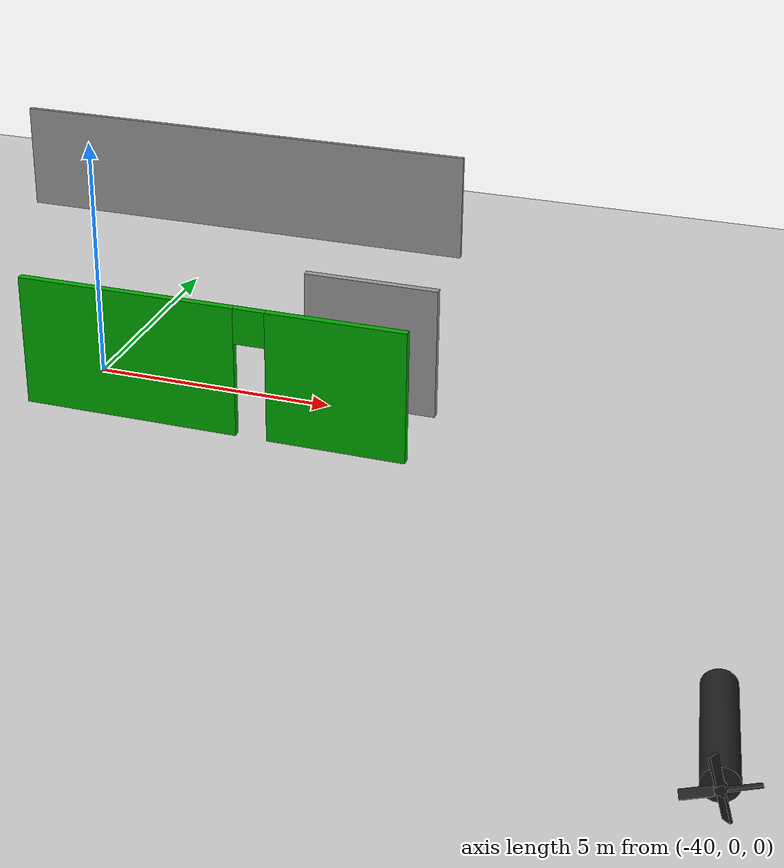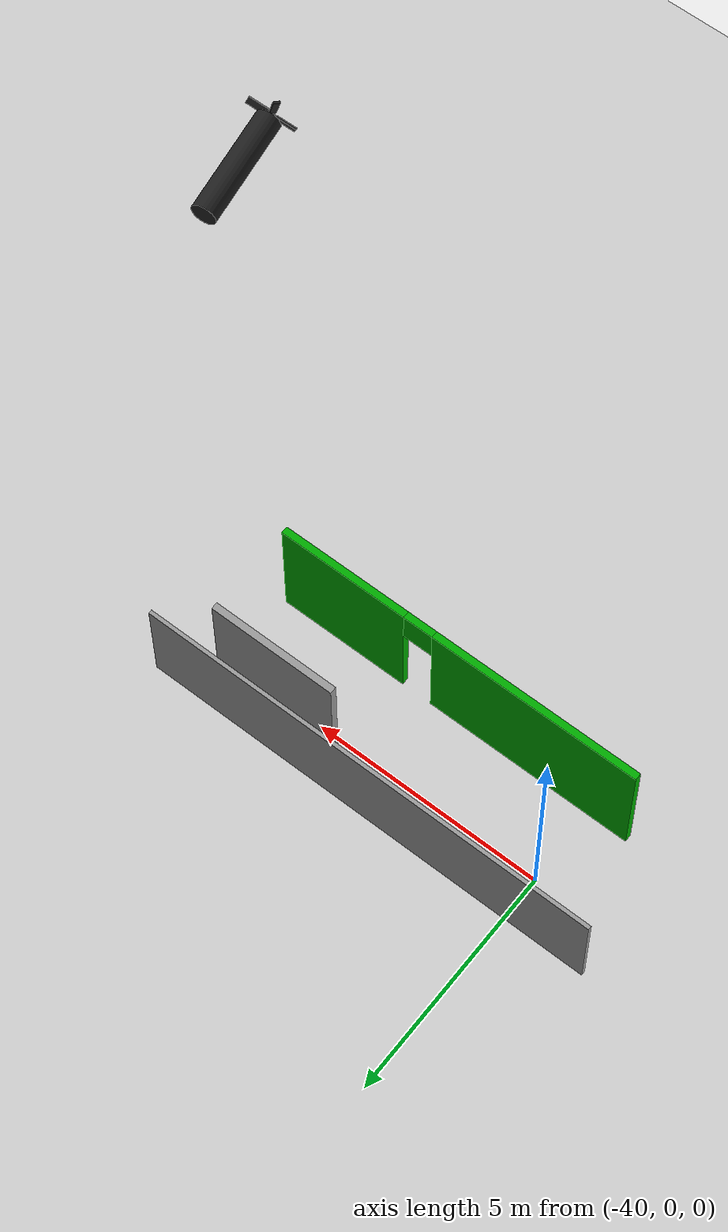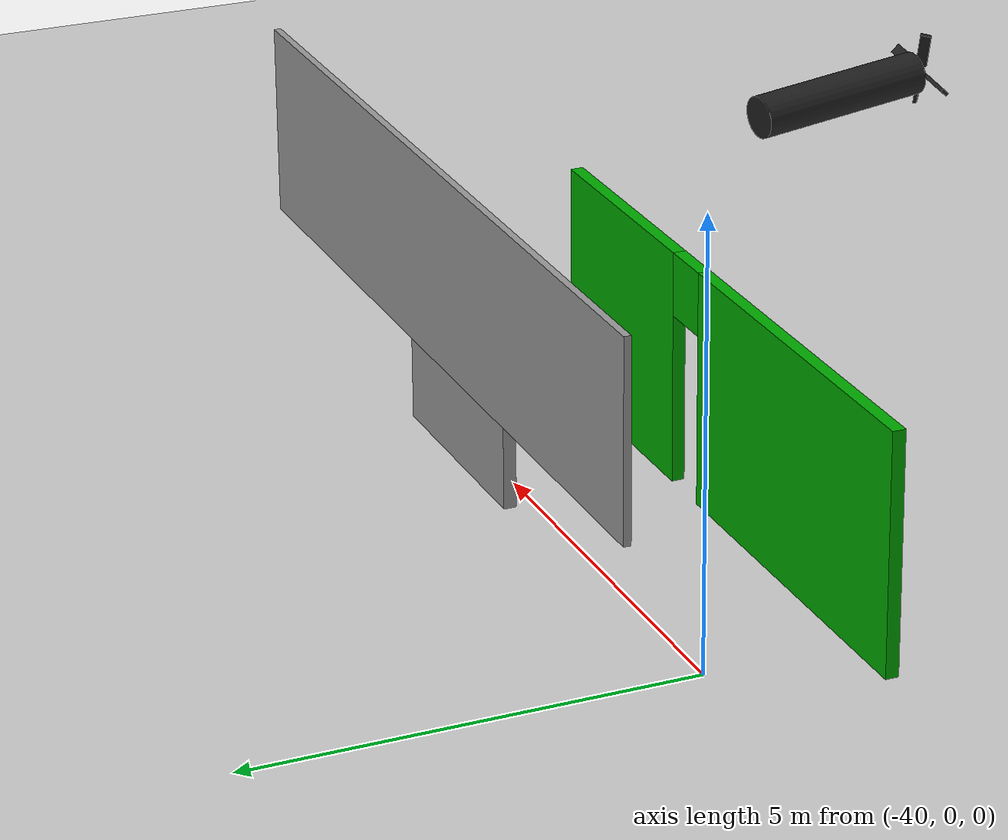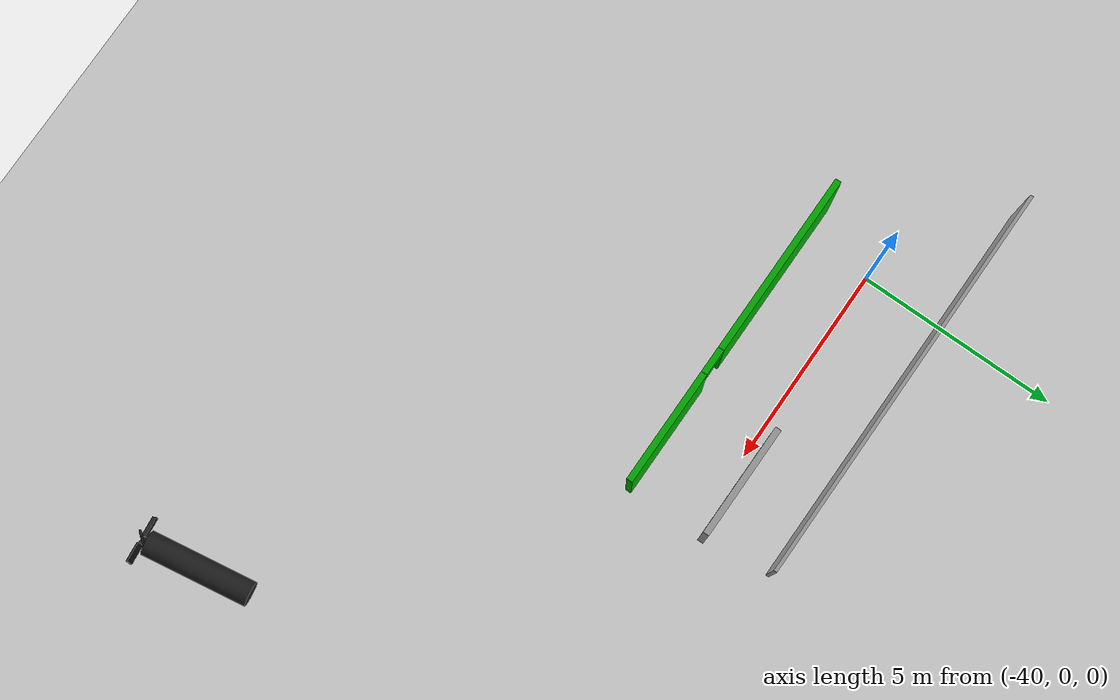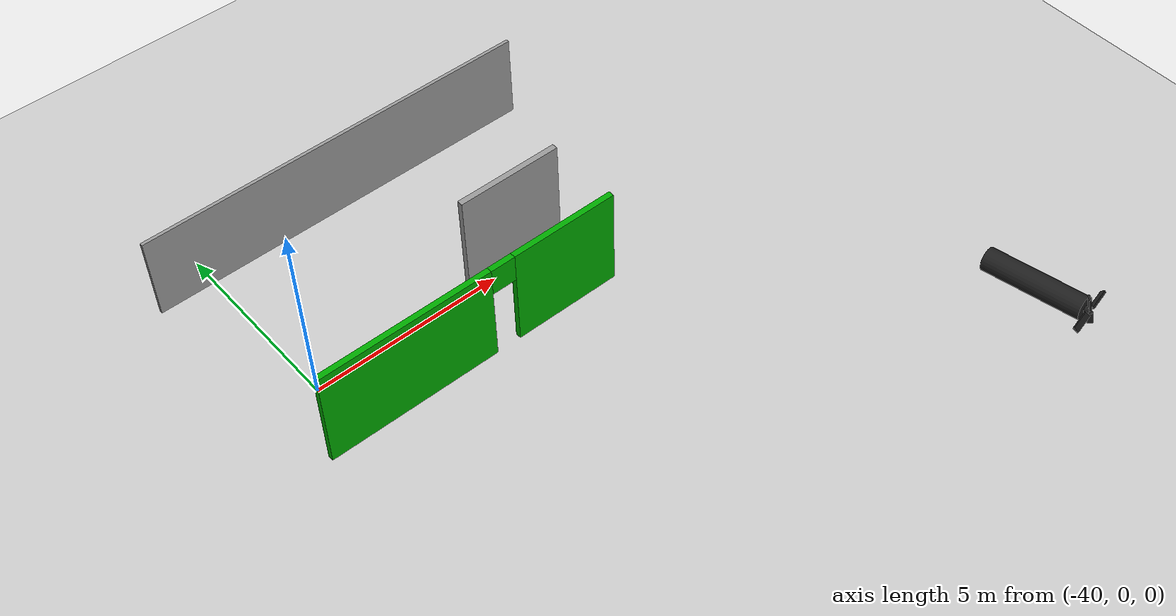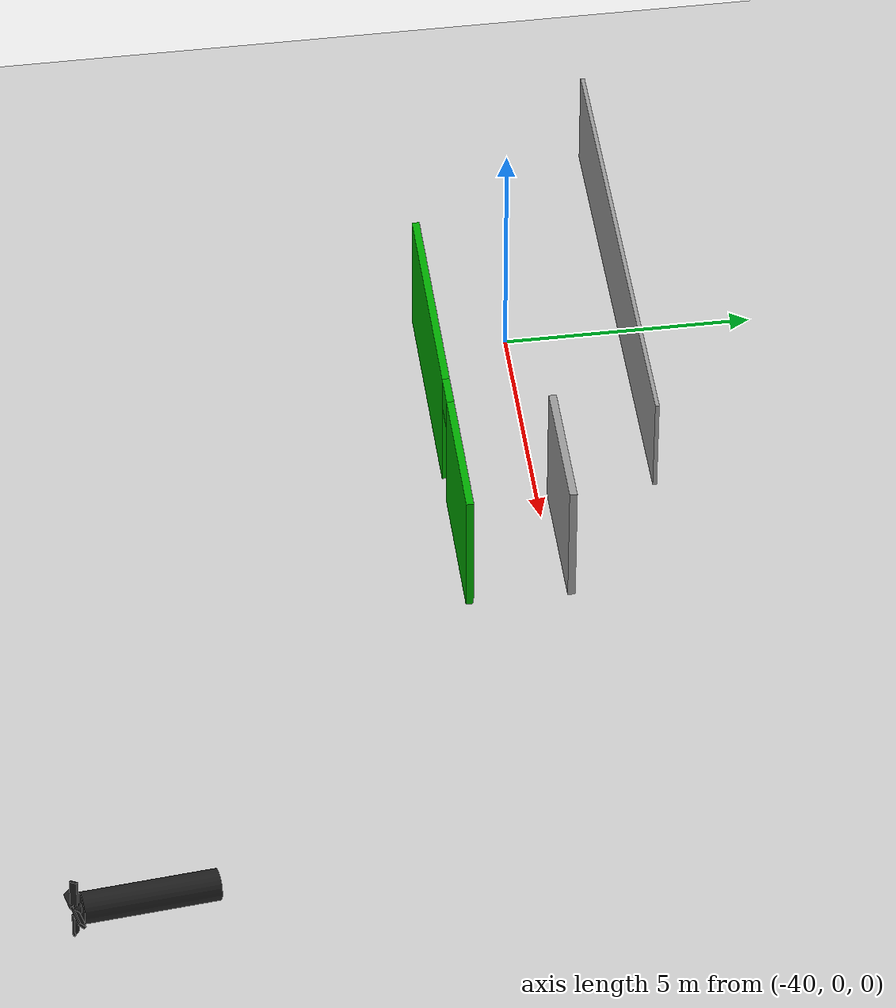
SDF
<sdf version="1.7">
 <world name="default">
  <model name="ground_plane">
   <static>1</static>
   <link name="link">
    <collision name="collision">
     <geometry><plane><normal>0 0 1</normal><size>100 100</size></plane></geometry>
     <surface><friction><ode><mu>100</mu><mu2>50</mu2></ode></friction></surface>
    </collision>
    <visual name="visual">
     <cast_shadows>0</cast_shadows>
     <geometry><plane><normal>0 0 1</normal><size>100 100</size></plane></geometry>
     <material>
      <script><uri>file://media/materials/scripts/gazebo.material</uri><name>Gazebo/Grey</name></script>
     </material>
    </visual>
   </link>
  </model>
  <model name="233333osrf_elevator">
   <link name="Wall_10">
    <pose>3.11003 -4.9485 0 0 -0 0</pose>
    <visual name="Wall_10_Visual_0">
     <meta><layer>0</layer></meta>
     <pose>-1.73626 0 1.3715 0 -0 0</pose>
     <geometry><box><size>4.52747 0.15 2.743</size></box></geometry>
     <material>
      <script><uri>file://media/materials/scripts/gazebo.material</uri><name>Gazebo/Grey</name></script>
      <ambient>0 0.666667 0 1</ambient>
      <shader type="pixel"/>
     </material>
    </visual>
    <visual name="Wall_10_Visual_1">
     <meta><layer>0</layer></meta>
     <pose>2.58694 0 1.3715 0 -0 0</pose>
     <geometry><box><size>2.82611 0.15 2.743</size></box></geometry>
     <material>
      <script><uri>file://media/materials/scripts/gazebo.material</uri><name>Gazebo/Grey</name></script>
      <ambient>0 0.666667 0 1</ambient>
      <shader type="pixel"/>
     </material>
    </visual>
    <visual name="Wall_10_Visual_2">
     <meta><layer>0</layer></meta>
     <pose>0.85068 0 2.3715 0 -0 0</pose>
     <geometry><box><size>0.646413 0.15 0.743</size></box></geometry>
     <material>
      <script><uri>file://media/materials/scripts/gazebo.material</uri><name>Gazebo/Grey</name></script>
      <ambient>0 0.666667 0 1</ambient>
      <shader type="pixel"/>
     </material>
    </visual>
    <collision name="Wall_10_Collision_0">
     <pose>-1.73626 0 1.3715 0 -0 0</pose>
     <geometry><box><size>4.52747 0.15 2.743</size></box></geometry>
     <surface>
      <friction>
       <ode><mu>1</mu><mu2>1</mu2><fdir1>0 0 0</fdir1><slip1>0</slip1><slip2>0</slip2></ode>
       <torsional>
        <coefficient>1</coefficient>
        <patch_radius>0</patch_radius>
        <surface_radius>0</surface_radius>
        <use_patch_radius>1</use_patch_radius>
        <ode><slip>0</slip></ode>
       </torsional>
      </friction>
      <bounce><restitution_coefficient>0</restitution_coefficient><threshold>1e+06</threshold></bounce>
      <contact>
       <collide_without_contact>0</collide_without_contact>
       <collide_without_contact_bitmask>1</collide_without_contact_bitmask>
       <collide_bitmask>1</collide_bitmask>
       <ode>
        <soft_cfm>0</soft_cfm>
        <soft_erp>0.2</soft_erp>
        <kp>1e+13</kp>
        <kd>1</kd>
        <max_vel>0.01</max_vel>
        <min_depth>0</min_depth>
       </ode>
       <bullet>
        <split_impulse>1</split_impulse>
        <split_impulse_penetration_threshold>-0.01</split_impulse_penetration_threshold>
        <soft_cfm>0</soft_cfm>
        <soft_erp>0.2</soft_erp>
        <kp>1e+13</kp>
        <kd>1</kd>
       </bullet>
      </contact>
     </surface>
    </collision>
    <collision name="Wall_10_Collision_1">
     <pose>2.58694 0 1.3715 0 -0 0</pose>
     <geometry><box><size>2.82611 0.15 2.743</size></box></geometry>
     <surface>
      <friction>
       <ode><mu>1</mu><mu2>1</mu2><fdir1>0 0 0</fdir1><slip1>0</slip1><slip2>0</slip2></ode>
       <torsional>
        <coefficient>1</coefficient>
        <patch_radius>0</patch_radius>
        <surface_radius>0</surface_radius>
        <use_patch_radius>1</use_patch_radius>
        <ode><slip>0</slip></ode>
       </torsional>
      </friction>
      <bounce><restitution_coefficient>0</restitution_coefficient><threshold>1e+06</threshold></bounce>
      <contact>
       <collide_without_contact>0</collide_without_contact>
       <collide_without_contact_bitmask>1</collide_without_contact_bitmask>
       <collide_bitmask>1</collide_bitmask>
       <ode>
        <soft_cfm>0</soft_cfm>
        <soft_erp>0.2</soft_erp>
        <kp>1e+13</kp>
        <kd>1</kd>
        <max_vel>0.01</max_vel>
        <min_depth>0</min_depth>
       </ode>
       <bullet>
        <split_impulse>1</split_impulse>
        <split_impulse_penetration_threshold>-0.01</split_impulse_penetration_threshold>
        <soft_cfm>0</soft_cfm>
        <soft_erp>0.2</soft_erp>
        <kp>1e+13</kp>
        <kd>1</kd>
       </bullet>
      </contact>
     </surface>
    </collision>
    <collision name="Wall_10_Collision_2">
     <pose>0.85068 0 2.3715 0 -0 0</pose>
     <geometry><box><size>0.646413 0.15 0.743</size></box></geometry>
     <surface>
      <friction>
       <ode><mu>1</mu><mu2>1</mu2><fdir1>0 0 0</fdir1><slip1>0</slip1><slip2>0</slip2></ode>
       <torsional>
        <coefficient>1</coefficient>
        <patch_radius>0</patch_radius>
        <surface_radius>0</surface_radius>
        <use_patch_radius>1</use_patch_radius>
        <ode><slip>0</slip></ode>
       </torsional>
      </friction>
      <bounce><restitution_coefficient>0</restitution_coefficient><threshold>1e+06</threshold></bounce>
      <contact>
       <collide_without_contact>0</collide_without_contact>
       <collide_without_contact_bitmask>1</collide_without_contact_bitmask>
       <collide_bitmask>1</collide_bitmask>
       <ode>
        <soft_cfm>0</soft_cfm>
        <soft_erp>0.2</soft_erp>
        <kp>1e+13</kp>
        <kd>1</kd>
        <max_vel>0.01</max_vel>
        <min_depth>0</min_depth>
       </ode>
       <bullet>
        <split_impulse>1</split_impulse>
        <split_impulse_penetration_threshold>-0.01</split_impulse_penetration_threshold>
        <soft_cfm>0</soft_cfm>
        <soft_erp>0.2</soft_erp>
        <kp>1e+13</kp>
        <kd>1</kd>
       </bullet>
      </contact>
     </surface>
    </collision>
   </link>
   <link name="Wall_23">
    <pose>5.74203 -2.9565 0 0 -0 0</pose>
    <visual name="Wall_23_Visual">
     <meta><layer>0</layer></meta>
     <pose>0 0 1.3715 0 -0 0</pose>
     <geometry><box><size>2.75 0.15 2.743</size></box></geometry>
     <material>
      <script><uri>file://media/materials/scripts/gazebo.material</uri><name>Gazebo/Grey</name></script>
      <ambient>1 1 1 1</ambient>
      <shader type="pixel"/>
     </material>
    </visual>
    <collision name="Wall_23_Collision">
     <pose>0 0 1.3715 0 -0 0</pose>
     <geometry><box><size>2.75 0.15 2.743</size></box></geometry>
     <surface>
      <friction>
       <ode><mu>1</mu><mu2>1</mu2><fdir1>0 0 0</fdir1><slip1>0</slip1><slip2>0</slip2></ode>
       <torsional>
        <coefficient>1</coefficient>
        <patch_radius>0</patch_radius>
        <surface_radius>0</surface_radius>
        <use_patch_radius>1</use_patch_radius>
        <ode><slip>0</slip></ode>
       </torsional>
      </friction>
      <bounce><restitution_coefficient>0</restitution_coefficient><threshold>1e+06</threshold></bounce>
      <contact>
       <collide_without_contact>0</collide_without_contact>
       <collide_without_contact_bitmask>1</collide_without_contact_bitmask>
       <collide_bitmask>1</collide_bitmask>
       <ode>
        <soft_cfm>0</soft_cfm>
        <soft_erp>0.2</soft_erp>
        <kp>1e+13</kp>
        <kd>1</kd>
        <max_vel>0.01</max_vel>
        <min_depth>0</min_depth>
       </ode>
       <bullet>
        <split_impulse>1</split_impulse>
        <split_impulse_penetration_threshold>-0.01</split_impulse_penetration_threshold>
        <soft_cfm>0</soft_cfm>
        <soft_erp>0.2</soft_erp>
        <kp>1e+13</kp>
        <kd>1</kd>
       </bullet>
      </contact>
     </surface>
    </collision>
   </link>
   <link name="floor1_part7">
    <pose>2.39941 -1.39058 3.85828 1.5708 -0 0</pose>
    <visual name="visual">
     <meta><layer>1</layer></meta>
     <geometry><box><size>9.43026 2.0998 0.078</size></box></geometry>
     <material><script><name>Gazebo/Grey</name><uri>__default__</uri></script><shader type="pixel"/></material>
    </visual>
    <collision name="collision">
     <geometry><box><size>9.43026 2.0998 0.078</size></box></geometry>
     <surface>
      <friction>
       <ode><mu>1</mu><mu2>1</mu2><fdir1>0 0 0</fdir1><slip1>0</slip1><slip2>0</slip2></ode>
       <torsional>
        <coefficient>1</coefficient>
        <patch_radius>0</patch_radius>
        <surface_radius>0</surface_radius>
        <use_patch_radius>1</use_patch_radius>
        <ode><slip>0</slip></ode>
       </torsional>
      </friction>
      <bounce><restitution_coefficient>0</restitution_coefficient><threshold>1e+06</threshold></bounce>
      <contact>
       <collide_without_contact>0</collide_without_contact>
       <collide_without_contact_bitmask>1</collide_without_contact_bitmask>
       <collide_bitmask>1</collide_bitmask>
       <ode>
        <soft_cfm>0</soft_cfm>
        <soft_erp>0.2</soft_erp>
        <kp>1e+13</kp>
        <kd>1</kd>
        <max_vel>0.01</max_vel>
        <min_depth>0</min_depth>
       </ode>
       <bullet>
        <split_impulse>1</split_impulse>
        <split_impulse_penetration_threshold>-0.01</split_impulse_penetration_threshold>
        <soft_cfm>0</soft_cfm>
        <soft_erp>0.2</soft_erp>
        <kp>1e+13</kp>
        <kd>1</kd>
       </bullet>
      </contact>
     </surface>
    </collision>
   </link>
   <static>1</static>
   <pose>-39.9417 3.24072 0 0 -0 0</pose>
  </model>
  <model name="submarine_sinking_0_clone_22">
   <pose>-25.7131 -9.67222 0.459063 1.50544 -0.272645 0.166817</pose>
   <link name="body">
    <pose>0 0 -1.07935 0 -0 0</pose>
    <inertial>
     <mass>1102.7</mass>
     <inertia><ixx>645.998</ixx><ixy>0</ixy><ixz>0</ixz><iyy>645.998</iyy><iyz>0</iyz><izz>49.6215</izz></inertia>
    </inertial>
    <visual name="body_visual">
     <geometry><cylinder><radius>0.3</radius><length>2.6</length></cylinder></geometry>
     <material>
      <script><uri>file://media/materials/scripts/gazebo.material</uri><name>Gazebo/Black</name></script>
     </material>
    </visual>
    <collision name="body_collision">
     <geometry><cylinder><radius>0.3</radius><length>2.6</length></cylinder></geometry>
    </collision>
    <visual name="spacer_visual">
     <pose>0 0 1.37855 0 -0 0</pose>
     <geometry><cylinder><radius>0.0933402</radius><length>0.127211</length></cylinder></geometry>
     <material>
      <script><uri>file://media/materials/scripts/gazebo.material</uri><name>Gazebo/Black</name></script>
     </material>
    </visual>
   </link>
   <link name="propeller">
    <pose>0 0 0.3455 3.14159 -0 0</pose>
    <inertial>
     <mass>25.2312</mass>
     <inertia><ixx>0.531907</ixx><ixy>0</ixy><ixz>0</ixz><iyy>0.531907</iyy><iyz>0</iyz><izz>1.0513</izz></inertia>
    </inertial>
    <visual name="blade1_visual">
     <pose>0.34334 0 0 0.785398 -0 0</pose>
     <geometry><box><size>0.5 0.154178 0.05455</size></box></geometry>
     <material>
      <script><uri>file://media/materials/scripts/gazebo.material</uri><name>Gazebo/Black</name></script>
     </material>
    </visual>
    <collision name="blade1_collision">
     <pose>0.34334 0 0 0.785398 -0 0</pose>
     <geometry><box><size>0.5 0.154178 0.05455</size></box></geometry>
    </collision>
    <visual name="blade2_visual">
     <pose>0 0.34334 0 0.785398 0 1.5708</pose>
     <geometry><box><size>0.5 0.154178 0.05455</size></box></geometry>
     <material>
      <script><uri>file://media/materials/scripts/gazebo.material</uri><name>Gazebo/Black</name></script>
     </material>
    </visual>
    <collision name="blade2_collision">
     <pose>0 0.34334 0 0.785398 0 1.5708</pose>
     <geometry><box><size>0.5 0.154178 0.05455</size></box></geometry>
    </collision>
    <visual name="blade3_visual">
     <pose>-0.34334 -0 0 -0.785398 0 0</pose>
     <geometry><box><size>0.5 0.154178 0.05455</size></box></geometry>
     <material>
      <script><uri>file://media/materials/scripts/gazebo.material</uri><name>Gazebo/Black</name></script>
     </material>
    </visual>
    <collision name="blade3_collision">
     <pose>-0.34334 -0 0 -0.785398 0 0</pose>
     <geometry><box><size>0.5 0.154178 0.05455</size></box></geometry>
    </collision>
    <visual name="blade4_visual">
     <pose>-0 -0.34334 0 -0.785398 -0 1.5708</pose>
     <geometry><box><size>0.5 0.154178 0.05455</size></box></geometry>
     <material>
      <script><uri>file://media/materials/scripts/gazebo.material</uri><name>Gazebo/Black</name></script>
     </material>
    </visual>
    <collision name="blade4_collision">
     <pose>-0 -0.34334 0 -0.785398 -0 1.5708</pose>
     <geometry><box><size>0.5 0.154178 0.05455</size></box></geometry>
    </collision>
   </link>
   <joint name="spinning_joint" type="revolute">
    <parent>body</parent>
    <child>propeller</child>
    <axis>
     <xyz expressed_in="__model__">0 0 1</xyz>
     <limit><lower>-1e+12</lower><upper>1e+12</upper><effort>-1</effort><velocity>-1</velocity></limit>
     <dynamics><spring_reference>0</spring_reference><spring_stiffness>0</spring_stiffness></dynamics>
    </axis>
   </joint>
   <plugin name="buoyancy" filename="libBuoyancyPlugin.so"><fluid_density>999.1026</fluid_density></plugin>
  </model>
 </world>
</sdf>
